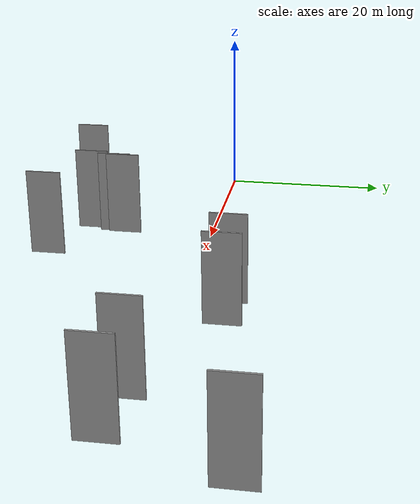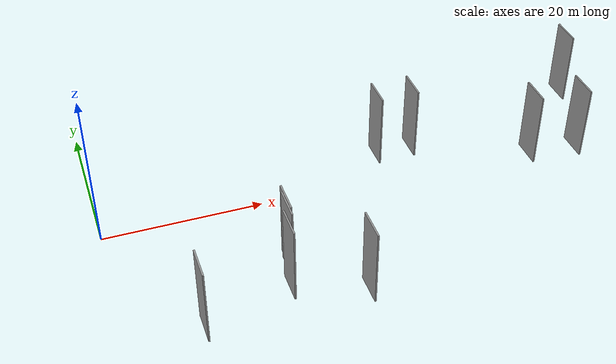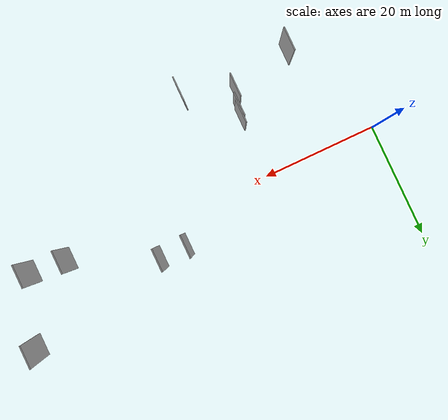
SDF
<sdf version="1.6">
 <world name="default">
  <scene>
   <sky><clouds><speed>12</speed></clouds></sky>
   <ambient>0.4 0.4 0.4 1</ambient>
   <background>0.7 0.7 0.7 1</background>
   <shadows>1</shadows>
  </scene>
  <gravity>0 0 -9.8066</gravity>
  <magnetic_field>6e-06 2.3e-05 -4.2e-05</magnetic_field>
  <physics default="0" name="default_physics" type="ode">
   <ode>
    <solver>
     <type>quick</type>
     <iters>10</iters>
     <sor>1.0</sor>
     <use_dynamic_moi_rescaling>0</use_dynamic_moi_rescaling>
    </solver>
    <constraints>
     <cfm>0</cfm>
     <erp>0.2</erp>
     <contact_max_correcting_vel>100</contact_max_correcting_vel>
     <contact_surface_layer>0.001</contact_surface_layer>
    </constraints>
   </ode>
   <max_step_size>0.004</max_step_size>
   <real_time_factor>1</real_time_factor>
   <real_time_update_rate>250</real_time_update_rate>
  </physics>
  <light name="sun" type="directional">
   <pose>0 0 10 0 0 0</pose>
   <diffuse>0.8 0.8 0.8 1</diffuse>
   <specular>0.2 0.2 0.2 1</specular>
   <attenuation>
    <range>1000</range>
    <constant>0.9</constant>
    <linear>0.01</linear>
    <quadratic>0.001</quadratic>
   </attenuation>
   <direction>-0.5 0.1 -0.9</direction>
  </light>
  <model name="grey_wall_1">
   <static>1</static>
   <pose>27.4039 -17.9968 0.0 0.000000 0.000000 1.570796</pose>
   <link name="link">
    <pose>0 0 5.00 0 0 0</pose>
    <collision name="collision"><geometry><box><size>4.00 0.2 10.00</size></box></geometry></collision>
    <visual name="visual">
     <cast_shadows>0</cast_shadows>
     <geometry><box><size>4.00 0.2 10.00</size></box></geometry>
     <material>
      <script>
       <uri>model://grey_wall/materials/scripts</uri>
       <uri>model://grey_wall/materials/textures</uri>
       <name>vrc/grey_wall</name>
      </script>
     </material>
    </visual>
   </link>
  </model>
  <model name="grey_wall_2">
   <static>1</static>
   <pose>36.8226 4.8149 0.0 0.000000 0.000000 1.570796</pose>
   <link name="link">
    <pose>0 0 5.00 0 0 0</pose>
    <collision name="collision"><geometry><box><size>4.00 0.2 10.00</size></box></geometry></collision>
    <visual name="visual">
     <cast_shadows>0</cast_shadows>
     <geometry><box><size>4.00 0.2 10.00</size></box></geometry>
     <material>
      <script>
       <uri>model://grey_wall/materials/scripts</uri>
       <uri>model://grey_wall/materials/textures</uri>
       <name>vrc/grey_wall</name>
      </script>
     </material>
    </visual>
   </link>
  </model>
  <model name="grey_wall_3">
   <static>1</static>
   <pose>66.4287 9.8592 0.0 0.000000 0.000000 1.570796</pose>
   <link name="link">
    <pose>0 0 5.00 0 0 0</pose>
    <collision name="collision"><geometry><box><size>4.00 0.2 10.00</size></box></geometry></collision>
    <visual name="visual">
     <cast_shadows>0</cast_shadows>
     <geometry><box><size>4.00 0.2 10.00</size></box></geometry>
     <material>
      <script>
       <uri>model://grey_wall/materials/scripts</uri>
       <uri>model://grey_wall/materials/textures</uri>
       <name>vrc/grey_wall</name>
      </script>
     </material>
    </visual>
   </link>
  </model>
  <model name="grey_wall_4">
   <static>1</static>
   <pose>62.3137 -1.9846 0.0 0.000000 0.000000 1.570796</pose>
   <link name="link">
    <pose>0 0 5.00 0 0 0</pose>
    <collision name="collision"><geometry><box><size>4.00 0.2 10.00</size></box></geometry></collision>
    <visual name="visual">
     <cast_shadows>0</cast_shadows>
     <geometry><box><size>4.00 0.2 10.00</size></box></geometry>
     <material>
      <script>
       <uri>model://grey_wall/materials/scripts</uri>
       <uri>model://grey_wall/materials/textures</uri>
       <name>vrc/grey_wall</name>
      </script>
     </material>
    </visual>
   </link>
  </model>
  <model name="grey_wall_5">
   <static>1</static>
   <pose>41.6811 4.8985 0.0 0.000000 0.000000 1.570796</pose>
   <link name="link">
    <pose>0 0 5.00 0 0 0</pose>
    <collision name="collision"><geometry><box><size>4.00 0.2 10.00</size></box></geometry></collision>
    <visual name="visual">
     <cast_shadows>0</cast_shadows>
     <geometry><box><size>4.00 0.2 10.00</size></box></geometry>
     <material>
      <script>
       <uri>model://grey_wall/materials/scripts</uri>
       <uri>model://grey_wall/materials/textures</uri>
       <name>vrc/grey_wall</name>
      </script>
     </material>
    </visual>
   </link>
  </model>
  <model name="grey_wall_6">
   <static>1</static>
   <pose>19.0397 -14.7931 0.0 0.000000 0.000000 1.570796</pose>
   <link name="link">
    <pose>0 0 5.00 0 0 0</pose>
    <collision name="collision"><geometry><box><size>4.00 0.2 10.00</size></box></geometry></collision>
    <visual name="visual">
     <cast_shadows>0</cast_shadows>
     <geometry><box><size>4.00 0.2 10.00</size></box></geometry>
     <material>
      <script>
       <uri>model://grey_wall/materials/scripts</uri>
       <uri>model://grey_wall/materials/textures</uri>
       <name>vrc/grey_wall</name>
      </script>
     </material>
    </visual>
   </link>
  </model>
  <model name="grey_wall_7">
   <static>1</static>
   <pose>19.9851 -10.7075 0.0 0.000000 0.000000 1.570796</pose>
   <link name="link">
    <pose>0 0 5.00 0 0 0</pose>
    <collision name="collision"><geometry><box><size>4.00 0.2 10.00</size></box></geometry></collision>
    <visual name="visual">
     <cast_shadows>0</cast_shadows>
     <geometry><box><size>4.00 0.2 10.00</size></box></geometry>
     <material>
      <script>
       <uri>model://grey_wall/materials/scripts</uri>
       <uri>model://grey_wall/materials/textures</uri>
       <name>vrc/grey_wall</name>
      </script>
     </material>
    </visual>
   </link>
  </model>
  <model name="grey_wall_8">
   <static>1</static>
   <pose>19.7620 -11.7971 0.0 0.000000 0.000000 1.570796</pose>
   <link name="link">
    <pose>0 0 5.00 0 0 0</pose>
    <collision name="collision"><geometry><box><size>4.00 0.2 10.00</size></box></geometry></collision>
    <visual name="visual">
     <cast_shadows>0</cast_shadows>
     <geometry><box><size>4.00 0.2 10.00</size></box></geometry>
     <material>
      <script>
       <uri>model://grey_wall/materials/scripts</uri>
       <uri>model://grey_wall/materials/textures</uri>
       <name>vrc/grey_wall</name>
      </script>
     </material>
    </visual>
   </link>
  </model>
  <model name="grey_wall_9">
   <static>1</static>
   <pose>55.8687 -1.4000 0.0 0.000000 0.000000 1.570796</pose>
   <link name="link">
    <pose>0 0 5.00 0 0 0</pose>
    <collision name="collision"><geometry><box><size>4.00 0.2 10.00</size></box></geometry></collision>
    <visual name="visual">
     <cast_shadows>0</cast_shadows>
     <geometry><box><size>4.00 0.2 10.00</size></box></geometry>
     <material>
      <script>
       <uri>model://grey_wall/materials/scripts</uri>
       <uri>model://grey_wall/materials/textures</uri>
       <name>vrc/grey_wall</name>
      </script>
     </material>
    </visual>
   </link>
  </model>
  <model name="grey_wall_10">
   <static>1</static>
   <pose>8.3473 -17.7420 0.0 0.000000 0.000000 1.570796</pose>
   <link name="link">
    <pose>0 0 5.00 0 0 0</pose>
    <collision name="collision"><geometry><box><size>4.00 0.2 10.00</size></box></geometry></collision>
    <visual name="visual">
     <cast_shadows>0</cast_shadows>
     <geometry><box><size>4.00 0.2 10.00</size></box></geometry>
     <material>
      <script>
       <uri>model://grey_wall/materials/scripts</uri>
       <uri>model://grey_wall/materials/textures</uri>
       <name>vrc/grey_wall</name>
      </script>
     </material>
    </visual>
   </link>
  </model>
 </world>
</sdf>
